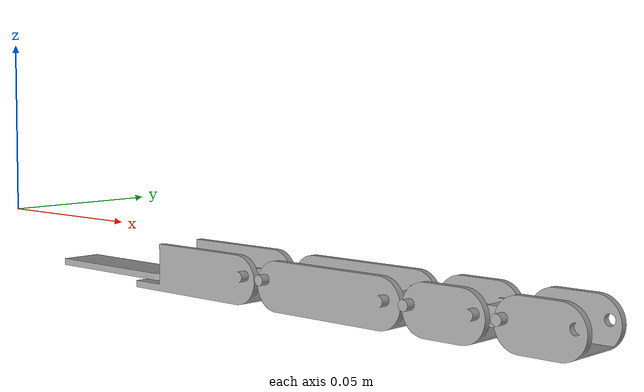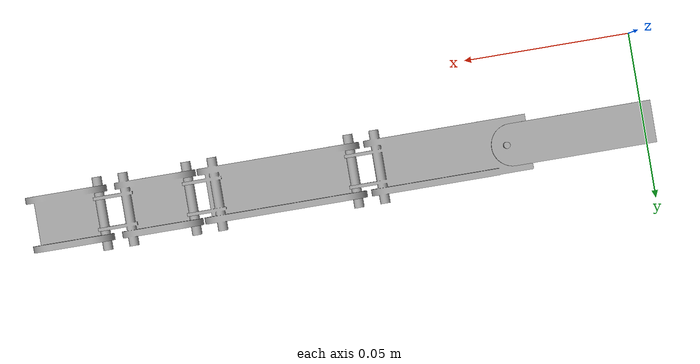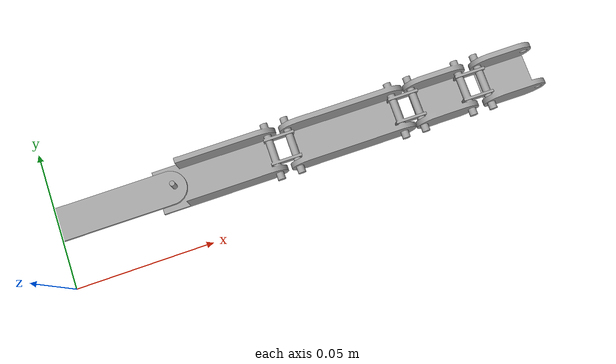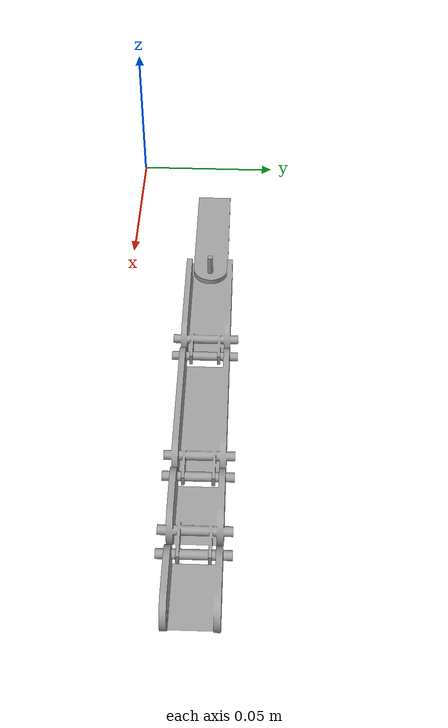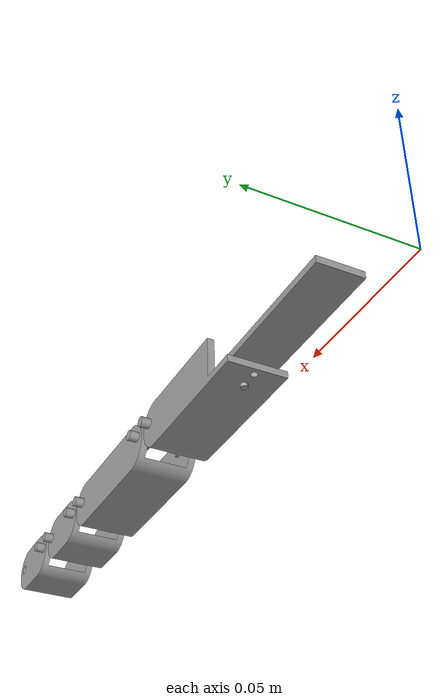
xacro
<?xml version="1.0" ?>
<robot name="final" xmlns:xacro="http://www.ros.org/wiki/xacro">

<xacro:include filename="$(find final_description)/urdf/materials.xacro" />
<xacro:include filename="$(find final_description)/urdf/final.trans" />
<xacro:include filename="$(find final_description)/urdf/final.gazebo" />
<link name="base_link">
  <inertial>
    <origin rpy="0 0 0" xyz="0.01998532849609568 0.027295541163343994 -0.019069614230280717"/>
    <mass value="0.009866147144623078"/>
    <inertia ixx="0.0" ixy="-0.0" ixz="-0.0" iyy="2e-06" iyz="0.0" izz="2e-06"/>
  </inertial>
  <visual>
    <origin rpy="0 0 0" xyz="0 0 0"/>
    <geometry>
      <mesh filename="package://final_description/meshes/base_link.stl" scale="0.001 0.001 0.001"/>
    </geometry>
    <material name="steel_satin"/>
  </visual>
  <collision>
    <origin rpy="0 0 0" xyz="0 0 0"/>
    <geometry>
      <mesh filename="package://final_description/meshes/base_link.stl" scale="0.001 0.001 0.001"/>
    </geometry>
  </collision>
</link>

<link name="Component1_1">
  <inertial>
    <origin rpy="0 0 0" xyz="-0.004221914808714464 0.020794811773651747 -0.018069614230280154"/>
    <mass value="0.0003205995302988158"/>
    <inertia ixx="0.0" ixy="-0.0" ixz="-0.0" iyy="0.0" iyz="-0.0" izz="0.0"/>
  </inertial>
  <visual>
    <origin rpy="0 0 0" xyz="-0.045424 -0.006365 -0.001"/>
    <geometry>
      <mesh filename="package://final_description/meshes/Component1_1.stl" scale="0.001 0.001 0.001"/>
    </geometry>
    <material name="steel_satin"/>
  </visual>
  <collision>
    <origin rpy="0 0 0" xyz="-0.045424 -0.006365 -0.001"/>
    <geometry>
      <mesh filename="package://final_description/meshes/Component1_1.stl" scale="0.001 0.001 0.001"/>
    </geometry>
  </collision>
</link>

<link name="mcp_pitch_v3_1">
  <inertial>
    <origin rpy="0 0 0" xyz="0.020786615800311943 6.408162882276525e-09 -0.0005407588092324542"/>
    <mass value="0.02828033372068621"/>
    <inertia ixx="2e-06" ixy="0.0" ixz="-0.0" iyy="5e-06" iyz="0.0" izz="6e-06"/>
  </inertial>
  <visual>
    <origin rpy="0 0 0" xyz="-0.041202 -0.02716 0.01707"/>
    <geometry>
      <mesh filename="package://final_description/meshes/mcp_pitch_v3_1.stl" scale="0.001 0.001 0.001"/>
    </geometry>
    <material name="steel_satin"/>
  </visual>
  <collision>
    <origin rpy="0 0 0" xyz="-0.041202 -0.02716 0.01707"/>
    <geometry>
      <mesh filename="package://final_description/meshes/mcp_pitch_v3_1.stl" scale="0.001 0.001 0.001"/>
    </geometry>
  </collision>
</link>

<link name="pip_pitch_v4_1">
  <inertial>
    <origin rpy="0 0 0" xyz="0.02321306976566513 -1.8823822801536383e-07 -0.003261825192231683"/>
    <mass value="0.030717031194181288"/>
    <inertia ixx="2e-06" ixy="-0.0" ixz="-0.0" iyy="6e-06" iyz="0.0" izz="7e-06"/>
  </inertial>
  <visual>
    <origin rpy="0 0 0" xyz="-0.088446 -0.02716 0.014108"/>
    <geometry>
      <mesh filename="package://final_description/meshes/pip_pitch_v4_1.stl" scale="0.001 0.001 0.001"/>
    </geometry>
    <material name="steel_satin"/>
  </visual>
  <collision>
    <origin rpy="0 0 0" xyz="-0.088446 -0.02716 0.014108"/>
    <geometry>
      <mesh filename="package://final_description/meshes/pip_pitch_v4_1.stl" scale="0.001 0.001 0.001"/>
    </geometry>
  </collision>
</link>

<link name="Component2_1">
  <inertial>
    <origin rpy="0 0 0" xyz="2.637680307226997e-07 0.004749811788558798 2.849092145870008e-07"/>
    <mass value="0.0012484885554907013"/>
    <inertia ixx="0.0" ixy="0.0" ixz="-0.0" iyy="0.0" iyz="0.0" izz="0.0"/>
  </inertial>
  <visual>
    <origin rpy="0 0 0" xyz="-0.088446 -0.02241 0.014108"/>
    <geometry>
      <mesh filename="package://final_description/meshes/Component2_1.stl" scale="0.001 0.001 0.001"/>
    </geometry>
    <material name="steel_satin"/>
  </visual>
  <collision>
    <origin rpy="0 0 0" xyz="-0.088446 -0.02241 0.014108"/>
    <geometry>
      <mesh filename="package://final_description/meshes/Component2_1.stl" scale="0.001 0.001 0.001"/>
    </geometry>
  </collision>
</link>

<link name="dip_link_v4_1">
  <inertial>
    <origin rpy="0 0 0" xyz="0.011296767502914612 -1.8819670825551138e-07 -0.002361154783569767"/>
    <mass value="0.014624532378435898"/>
    <inertia ixx="1e-06" ixy="-0.0" ixz="-0.0" iyy="1e-06" iyz="0.0" izz="1e-06"/>
  </inertial>
  <visual>
    <origin rpy="0 0 0" xyz="-0.138389 -0.02716 0.014663"/>
    <geometry>
      <mesh filename="package://final_description/meshes/dip_link_v4_1.stl" scale="0.001 0.001 0.001"/>
    </geometry>
    <material name="steel_satin"/>
  </visual>
  <collision>
    <origin rpy="0 0 0" xyz="-0.138389 -0.02716 0.014663"/>
    <geometry>
      <mesh filename="package://final_description/meshes/dip_link_v4_1.stl" scale="0.001 0.001 0.001"/>
    </geometry>
  </collision>
</link>

<link name="Component3_1">
  <inertial>
    <origin rpy="0 0 0" xyz="-6.015627829203396e-08 0.004749811803456773 -2.246023113501583e-08"/>
    <mass value="0.0012484885554907013"/>
    <inertia ixx="0.0" ixy="0.0" ixz="-0.0" iyy="0.0" iyz="0.0" izz="0.0"/>
  </inertial>
  <visual>
    <origin rpy="0 0 0" xyz="-0.138389 -0.02241 0.014663"/>
    <geometry>
      <mesh filename="package://final_description/meshes/Component3_1.stl" scale="0.001 0.001 0.001"/>
    </geometry>
    <material name="steel_satin"/>
  </visual>
  <collision>
    <origin rpy="0 0 0" xyz="-0.138389 -0.02241 0.014663"/>
    <geometry>
      <mesh filename="package://final_description/meshes/Component3_1.stl" scale="0.001 0.001 0.001"/>
    </geometry>
  </collision>
</link>

<link name="tip_link_v1_1">
  <inertial>
    <origin rpy="0 0 0" xyz="0.010010721361132291 -1.8819654726276447e-07 -0.0027084311651251816"/>
    <mass value="0.012847060150780966"/>
    <inertia ixx="1e-06" ixy="-0.0" ixz="-0.0" iyy="1e-06" iyz="0.0" izz="1e-06"/>
  </inertial>
  <visual>
    <origin rpy="0 0 0" xyz="-0.165785 -0.02716 0.014515"/>
    <geometry>
      <mesh filename="package://final_description/meshes/tip_link_v1_1.stl" scale="0.001 0.001 0.001"/>
    </geometry>
    <material name="steel_satin"/>
  </visual>
  <collision>
    <origin rpy="0 0 0" xyz="-0.165785 -0.02716 0.014515"/>
    <geometry>
      <mesh filename="package://final_description/meshes/tip_link_v1_1.stl" scale="0.001 0.001 0.001"/>
    </geometry>
  </collision>
</link>

<link name="Component4_1">
  <inertial>
    <origin rpy="0 0 0" xyz="2.954599677973402e-07 0.004749811803658861 -1.5021864112167715e-07"/>
    <mass value="0.0012484885554907013"/>
    <inertia ixx="0.0" ixy="-0.0" ixz="-0.0" iyy="0.0" iyz="-0.0" izz="0.0"/>
  </inertial>
  <visual>
    <origin rpy="0 0 0" xyz="-0.165785 -0.02241 0.014515"/>
    <geometry>
      <mesh filename="package://final_description/meshes/Component4_1.stl" scale="0.001 0.001 0.001"/>
    </geometry>
    <material name="steel_satin"/>
  </visual>
  <collision>
    <origin rpy="0 0 0" xyz="-0.165785 -0.02241 0.014515"/>
    <geometry>
      <mesh filename="package://final_description/meshes/Component4_1.stl" scale="0.001 0.001 0.001"/>
    </geometry>
  </collision>
</link>

<joint name="Rigid2" type="fixed">
  <origin rpy="0 0 0" xyz="0.045424 0.006365 0.001"/>
  <parent link="base_link"/>
  <child link="Component1_1"/>
</joint>

<joint name="mcp_yaw" type="continuous">
  <origin rpy="0 0 0" xyz="-0.004222 0.020795 -0.01807"/>
  <parent link="Component1_1"/>
  <child link="mcp_pitch_v3_1"/>
  <axis xyz="-0.0 -0.0 -1.0"/>
</joint>

<joint name="Rigid6" type="fixed">
  <origin rpy="0 0 0" xyz="0.0 0.00475 0.0"/>
  <parent link="Component2_1"/>
  <child link="pip_pitch_v4_1"/>
</joint>

<joint name="Rigid7" type="fixed">
  <origin rpy="0 0 0" xyz="0.047244 -0.00475 0.002962"/>
  <parent link="mcp_pitch_v3_1"/>
  <child link="Component2_1"/>
</joint>

<joint name="Rigid8" type="fixed">
  <origin rpy="0 0 0" xyz="0.0 0.00475 0.0"/>
  <parent link="Component3_1"/>
  <child link="dip_link_v4_1"/>
</joint>

<joint name="Rigid9" type="fixed">
  <origin rpy="0 0 0" xyz="0.049943 -0.00475 -0.000555"/>
  <parent link="pip_pitch_v4_1"/>
  <child link="Component3_1"/>
</joint>

<joint name="Rigid10" type="fixed">
  <origin rpy="0 0 0" xyz="0.0 0.00475 0.0"/>
  <parent link="Component4_1"/>
  <child link="tip_link_v1_1"/>
</joint>

<joint name="Rigid11" type="fixed">
  <origin rpy="0 0 0" xyz="0.027396 -0.00475 0.000148"/>
  <parent link="dip_link_v4_1"/>
  <child link="Component4_1"/>
</joint>

</robot>

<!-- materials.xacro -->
<robot name="final" xmlns:xacro="http://www.ros.org/wiki/xacro" >

<material name="silver_default">
  <color rgba="0.700 0.700 0.700 1.000"/>
</material>
<material name="steel_satin">
  <color rgba="0.6274509803921569 0.6274509803921569 0.6274509803921569 1.0"/>
</material>

</robot>

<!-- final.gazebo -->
<robot name="final" xmlns:xacro="http://www.ros.org/wiki/xacro" >

<xacro:property name="body_color" value="Gazebo/Silver" />

<gazebo>
  <plugin filename="libgazebo_ros_control.so" name="control"/>
</gazebo>
<gazebo reference="base_link">
  <material>${body_color}</material>
  <mu1>0.2</mu1>
  <mu2>0.2</mu2>
  <selfCollide>true</selfCollide>
  <gravity>true</gravity>
</gazebo>

<gazebo reference="Component1_1">
  <material>${body_color}</material>
  <mu1>0.2</mu1>
  <mu2>0.2</mu2>
  <selfCollide>true</selfCollide>
</gazebo>

<gazebo reference="mcp_pitch_v3_1">
  <material>${body_color}</material>
  <mu1>0.2</mu1>
  <mu2>0.2</mu2>
  <selfCollide>true</selfCollide>
</gazebo>

<gazebo reference="pip_pitch_v4_1">
  <material>${body_color}</material>
  <mu1>0.2</mu1>
  <mu2>0.2</mu2>
  <selfCollide>true</selfCollide>
</gazebo>

<gazebo reference="Component2_1">
  <material>${body_color}</material>
  <mu1>0.2</mu1>
  <mu2>0.2</mu2>
  <selfCollide>true</selfCollide>
</gazebo>

<gazebo reference="dip_link_v4_1">
  <material>${body_color}</material>
  <mu1>0.2</mu1>
  <mu2>0.2</mu2>
  <selfCollide>true</selfCollide>
</gazebo>

<gazebo reference="Component3_1">
  <material>${body_color}</material>
  <mu1>0.2</mu1>
  <mu2>0.2</mu2>
  <selfCollide>true</selfCollide>
</gazebo>

<gazebo reference="tip_link_v1_1">
  <material>${body_color}</material>
  <mu1>0.2</mu1>
  <mu2>0.2</mu2>
  <selfCollide>true</selfCollide>
</gazebo>

<gazebo reference="Component4_1">
  <material>${body_color}</material>
  <mu1>0.2</mu1>
  <mu2>0.2</mu2>
  <selfCollide>true</selfCollide>
</gazebo>

</robot>
